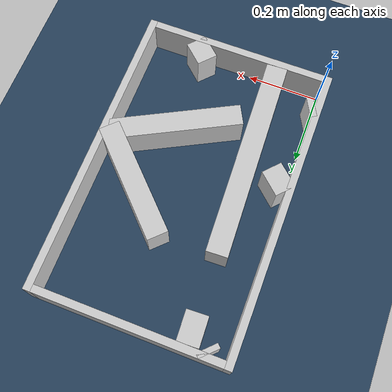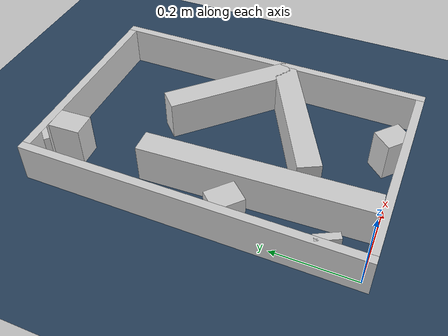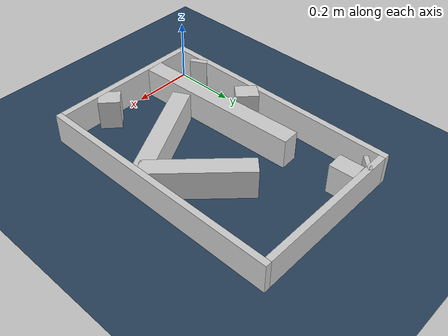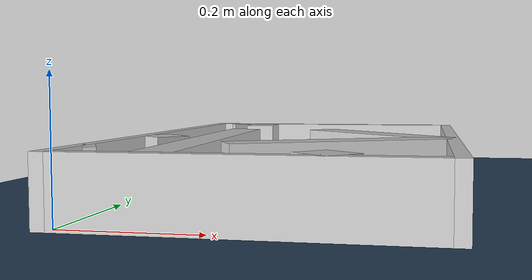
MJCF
<?xml version="1.0" ?>
<mujoco model="generated_real_template">
  <compiler angle="degree"/>
  <option timestep="0.002" integrator="implicitfast" iterations="100" cone="elliptic"/>
  <default>
    <geom density="1"/>
  </default>
  <asset>
    <texture builtin="gradient" height="3072" rgb1="0.3 0.5 0.7" rgb2="0 0 0" type="skybox" width="512"/>
    <texture builtin="checker" height="300" mark="edge" markrgb="0.8 0.8 0.8" name="groundplane" rgb1="0.2 0.3 0.4" rgb2="0.1 0.2 0.3" type="2d" width="300"/>
    <material name="groundplane" reflectance="0.2" texrepeat="5 5" texture="groundplane" texuniform="true"/>
  </asset>
  <worldbody>
    <light dir="0 0 -1" directional="true" pos="0 0 1.5"/>
    <geom name="floor" type="plane" condim="4" friction="0.5 0.005 0.001" material="groundplane" size="0 0 0.05"/>
    <body name="walls">
      <geom name="wall_boundary_left" type="box" condim="4" friction="1.0 0.005 0.0001" rgba="0.8 0.8 0.8 1" pos="-0.010000 0.387500 0.050000" euler="0 0 0.000000" size="0.010000 0.407500 0.050000"/>
      <geom name="wall_boundary_right" type="box" condim="4" friction="1.0 0.005 0.0001" rgba="0.8 0.8 0.8 1" pos="0.500000 0.387500 0.050000" euler="0 0 0.000000" size="0.010000 0.407500 0.050000"/>
      <geom name="wall_boundary_bottom" type="box" condim="4" friction="1.0 0.005 0.0001" rgba="0.8 0.8 0.8 1" pos="0.245000 -0.010000 0.050000" euler="0 0 0.000000" size="0.245000 0.010000 0.050000"/>
      <geom name="wall_boundary_top" type="box" condim="4" friction="1.0 0.005 0.0001" rgba="0.8 0.8 0.8 1" pos="0.245000 0.785000 0.050000" euler="0 0 0.000000" size="0.245000 0.010000 0.050000"/>
      <geom name="wall_inner_1_1" type="box" condim="4" friction="1.0 0.005 0.0001" rgba="0.8 0.8 0.8 1" pos="0.373768 0.442075 0.050000" euler="0 0 134.829962" size="0.164564 0.028500 0.050000"/>
      <geom name="wall_inner_1_2" type="box" condim="4" friction="1.0 0.005 0.0001" rgba="0.8 0.8 0.8 1" pos="0.047775 0.770009 0.050000" euler="0 0 134.829962" size="0.006905 0.028500 0.050000"/>
      <geom name="wall_inner_2_1" type="box" condim="4" friction="1.0 0.005 0.0001" rgba="0.8 0.8 0.8 1" pos="0.026705 0.310963 0.050000" euler="0 0 -42.303351" size="0.036108 0.028500 0.050000"/>
      <geom name="wall_inner_2_2" type="box" condim="4" friction="1.0 0.005 0.0001" rgba="0.8 0.8 0.8 1" pos="0.342093 0.023949 0.050000" euler="0 0 -42.303351" size="0.033979 0.028500 0.050000"/>
      <geom name="wall_inner_3_1" type="box" condim="4" friction="1.0 0.005 0.0001" rgba="0.8 0.8 0.8 1" pos="0.007878 0.083989 0.050000" euler="0 0 27.754614" size="0.008903 0.028500 0.050000"/>
      <geom name="wall_inner_3_2" type="box" condim="4" friction="1.0 0.005 0.0001" rgba="0.8 0.8 0.8 1" pos="0.331869 0.254482 0.050000" euler="0 0 27.754614" size="0.178690 0.028500 0.050000"/>
      <geom name="wall_inner_4_1" type="box" condim="4" friction="1.0 0.005 0.0001" rgba="0.8 0.8 0.8 1" pos="0.118755 0.275542 0.050000" euler="0 0 92.496698" size="0.275804 0.028500 0.050000"/>
      <geom name="wall_inner_4_2" type="box" condim="4" friction="1.0 0.005 0.0001" rgba="0.8 0.8 0.8 1" pos="0.098680 0.735942 0.050000" euler="0 0 92.496698" size="0.039095 0.028500 0.050000"/>
    </body>
  </worldbody>
</mujoco>
